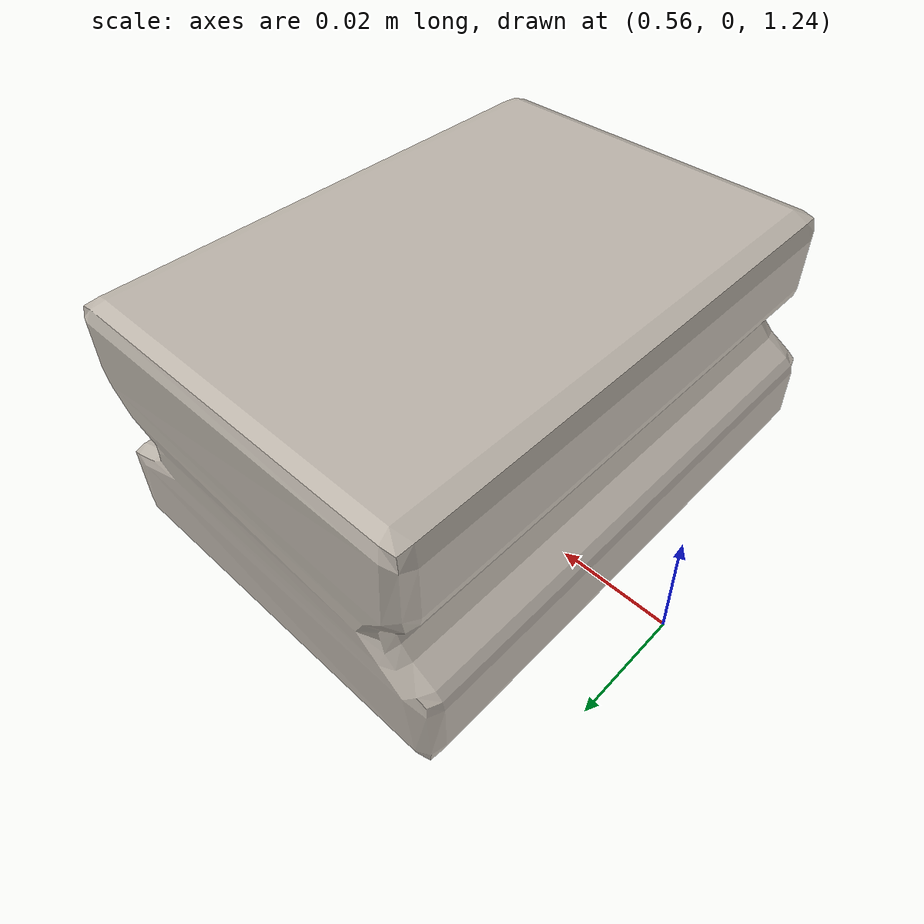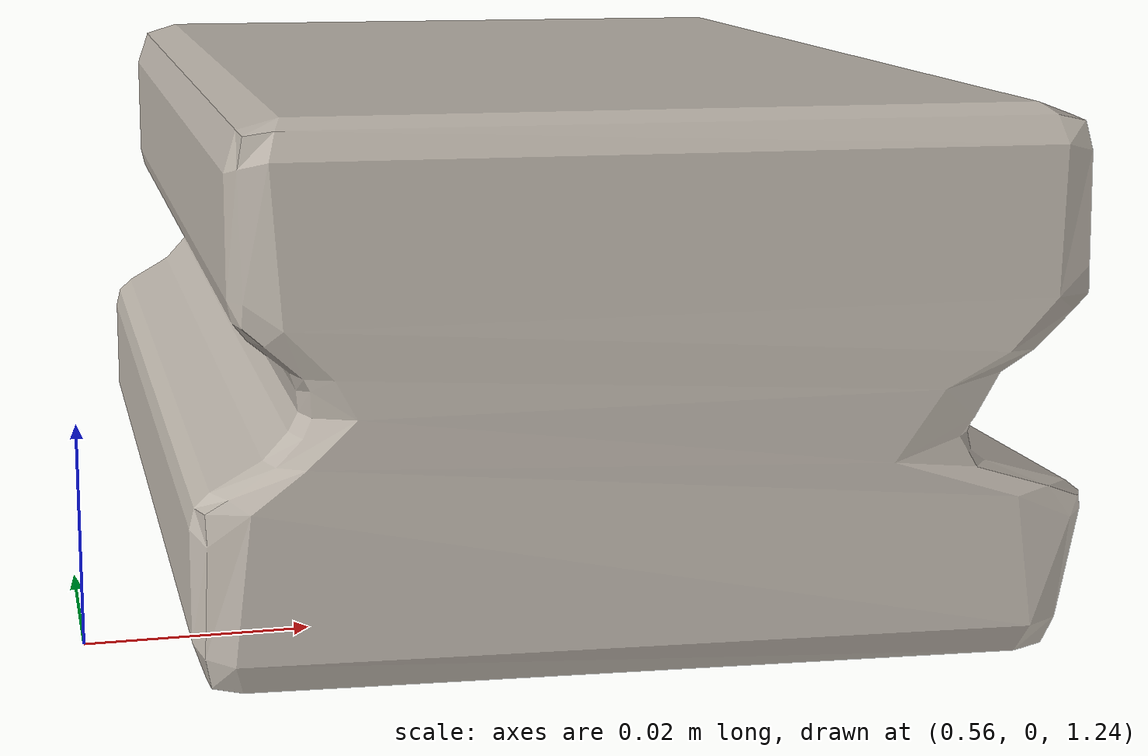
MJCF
<mujoco model="sponge_3">
  <asset>
    <mesh file="../objects/bigym/sponge_3/visual/model_normalized_0.obj" name="sponge_3_model_normalized_0_vis" scale="0.08999999999999997 0.08999999999999997 0.08999999999999997" refquat="0.7071067811865475 -0.7071067811865476 0.0 0.0"/>
    <mesh file="../objects/bigym/sponge_3/collision/model_normalized_collision_22.obj" name="sponge_3_model_normalized_collision_22._coll" scale="0.08999999999999997 0.08999999999999997 0.08999999999999997" refquat="0.7071067811865475 -0.7071067811865476 0.0 0.0"/>
    <mesh file="../objects/bigym/sponge_3/collision/model_normalized_collision_23.obj" name="sponge_3_model_normalized_collision_23._coll" scale="0.08999999999999997 0.08999999999999997 0.08999999999999997" refquat="0.7071067811865475 -0.7071067811865476 0.0 0.0"/>
    <mesh file="../objects/bigym/sponge_3/collision/model_normalized_collision_21.obj" name="sponge_3_model_normalized_collision_21._coll" scale="0.08999999999999997 0.08999999999999997 0.08999999999999997" refquat="0.7071067811865475 -0.7071067811865476 0.0 0.0"/>
    <mesh file="../objects/bigym/sponge_3/collision/model_normalized_collision_20.obj" name="sponge_3_model_normalized_collision_20._coll" scale="0.08999999999999997 0.08999999999999997 0.08999999999999997" refquat="0.7071067811865475 -0.7071067811865476 0.0 0.0"/>
    <mesh file="../objects/bigym/sponge_3/collision/model_normalized_collision_24.obj" name="sponge_3_model_normalized_collision_24._coll" scale="0.08999999999999997 0.08999999999999997 0.08999999999999997" refquat="0.7071067811865475 -0.7071067811865476 0.0 0.0"/>
    <mesh file="../objects/bigym/sponge_3/collision/model_normalized_collision_30.obj" name="sponge_3_model_normalized_collision_30._coll" scale="0.08999999999999997 0.08999999999999997 0.08999999999999997" refquat="0.7071067811865475 -0.7071067811865476 0.0 0.0"/>
    <mesh file="../objects/bigym/sponge_3/collision/model_normalized_collision_18.obj" name="sponge_3_model_normalized_collision_18._coll" scale="0.08999999999999997 0.08999999999999997 0.08999999999999997" refquat="0.7071067811865475 -0.7071067811865476 0.0 0.0"/>
    <mesh file="../objects/bigym/sponge_3/collision/model_normalized_collision_19.obj" name="sponge_3_model_normalized_collision_19._coll" scale="0.08999999999999997 0.08999999999999997 0.08999999999999997" refquat="0.7071067811865475 -0.7071067811865476 0.0 0.0"/>
    <mesh file="../objects/bigym/sponge_3/collision/model_normalized_collision_31.obj" name="sponge_3_model_normalized_collision_31._coll" scale="0.08999999999999997 0.08999999999999997 0.08999999999999997" refquat="0.7071067811865475 -0.7071067811865476 0.0 0.0"/>
    <mesh file="../objects/bigym/sponge_3/collision/model_normalized_collision_25.obj" name="sponge_3_model_normalized_collision_25._coll" scale="0.08999999999999997 0.08999999999999997 0.08999999999999997" refquat="0.7071067811865475 -0.7071067811865476 0.0 0.0"/>
    <mesh file="../objects/bigym/sponge_3/collision/model_normalized_collision_27.obj" name="sponge_3_model_normalized_collision_27._coll" scale="0.08999999999999997 0.08999999999999997 0.08999999999999997" refquat="0.7071067811865475 -0.7071067811865476 0.0 0.0"/>
    <mesh file="../objects/bigym/sponge_3/collision/model_normalized_collision_26.obj" name="sponge_3_model_normalized_collision_26._coll" scale="0.08999999999999997 0.08999999999999997 0.08999999999999997" refquat="0.7071067811865475 -0.7071067811865476 0.0 0.0"/>
    <mesh file="../objects/bigym/sponge_3/collision/model_normalized_collision_9.obj" name="sponge_3_model_normalized_collision_9._coll" scale="0.08999999999999997 0.08999999999999997 0.08999999999999997" refquat="0.7071067811865475 -0.7071067811865476 0.0 0.0"/>
    <mesh file="../objects/bigym/sponge_3/collision/model_normalized_collision_8.obj" name="sponge_3_model_normalized_collision_8._coll" scale="0.08999999999999997 0.08999999999999997 0.08999999999999997" refquat="0.7071067811865475 -0.7071067811865476 0.0 0.0"/>
    <mesh file="../objects/bigym/sponge_3/collision/model_normalized_collision_6.obj" name="sponge_3_model_normalized_collision_6._coll" scale="0.08999999999999997 0.08999999999999997 0.08999999999999997" refquat="0.7071067811865475 -0.7071067811865476 0.0 0.0"/>
    <mesh file="../objects/bigym/sponge_3/collision/model_normalized_collision_7.obj" name="sponge_3_model_normalized_collision_7._coll" scale="0.08999999999999997 0.08999999999999997 0.08999999999999997" refquat="0.7071067811865475 -0.7071067811865476 0.0 0.0"/>
    <mesh file="../objects/bigym/sponge_3/collision/model_normalized_collision_5.obj" name="sponge_3_model_normalized_collision_5._coll" scale="0.08999999999999997 0.08999999999999997 0.08999999999999997" refquat="0.7071067811865475 -0.7071067811865476 0.0 0.0"/>
    <mesh file="../objects/bigym/sponge_3/collision/model_normalized_collision_4.obj" name="sponge_3_model_normalized_collision_4._coll" scale="0.08999999999999997 0.08999999999999997 0.08999999999999997" refquat="0.7071067811865475 -0.7071067811865476 0.0 0.0"/>
    <mesh file="../objects/bigym/sponge_3/collision/model_normalized_collision_0.obj" name="sponge_3_model_normalized_collision_0._coll" scale="0.08999999999999997 0.08999999999999997 0.08999999999999997" refquat="0.7071067811865475 -0.7071067811865476 0.0 0.0"/>
    <mesh file="../objects/bigym/sponge_3/collision/model_normalized_collision_1.obj" name="sponge_3_model_normalized_collision_1._coll" scale="0.08999999999999997 0.08999999999999997 0.08999999999999997" refquat="0.7071067811865475 -0.7071067811865476 0.0 0.0"/>
    <mesh file="../objects/bigym/sponge_3/collision/model_normalized_collision_3.obj" name="sponge_3_model_normalized_collision_3._coll" scale="0.08999999999999997 0.08999999999999997 0.08999999999999997" refquat="0.7071067811865475 -0.7071067811865476 0.0 0.0"/>
    <mesh file="../objects/bigym/sponge_3/collision/model_normalized_collision_2.obj" name="sponge_3_model_normalized_collision_2._coll" scale="0.08999999999999997 0.08999999999999997 0.08999999999999997" refquat="0.7071067811865475 -0.7071067811865476 0.0 0.0"/>
    <mesh file="../objects/bigym/sponge_3/collision/model_normalized_collision_17.obj" name="sponge_3_model_normalized_collision_17._coll" scale="0.08999999999999997 0.08999999999999997 0.08999999999999997" refquat="0.7071067811865475 -0.7071067811865476 0.0 0.0"/>
    <mesh file="../objects/bigym/sponge_3/collision/model_normalized_collision_16.obj" name="sponge_3_model_normalized_collision_16._coll" scale="0.08999999999999997 0.08999999999999997 0.08999999999999997" refquat="0.7071067811865475 -0.7071067811865476 0.0 0.0"/>
    <mesh file="../objects/bigym/sponge_3/collision/model_normalized_collision_28.obj" name="sponge_3_model_normalized_collision_28._coll" scale="0.08999999999999997 0.08999999999999997 0.08999999999999997" refquat="0.7071067811865475 -0.7071067811865476 0.0 0.0"/>
    <mesh file="../objects/bigym/sponge_3/collision/model_normalized_collision_14.obj" name="sponge_3_model_normalized_collision_14._coll" scale="0.08999999999999997 0.08999999999999997 0.08999999999999997" refquat="0.7071067811865475 -0.7071067811865476 0.0 0.0"/>
    <mesh file="../objects/bigym/sponge_3/collision/model_normalized_collision_15.obj" name="sponge_3_model_normalized_collision_15._coll" scale="0.08999999999999997 0.08999999999999997 0.08999999999999997" refquat="0.7071067811865475 -0.7071067811865476 0.0 0.0"/>
    <mesh file="../objects/bigym/sponge_3/collision/model_normalized_collision_29.obj" name="sponge_3_model_normalized_collision_29._coll" scale="0.08999999999999997 0.08999999999999997 0.08999999999999997" refquat="0.7071067811865475 -0.7071067811865476 0.0 0.0"/>
    <mesh file="../objects/bigym/sponge_3/collision/model_normalized_collision_11.obj" name="sponge_3_model_normalized_collision_11._coll" scale="0.08999999999999997 0.08999999999999997 0.08999999999999997" refquat="0.7071067811865475 -0.7071067811865476 0.0 0.0"/>
    <mesh file="../objects/bigym/sponge_3/collision/model_normalized_collision_10.obj" name="sponge_3_model_normalized_collision_10._coll" scale="0.08999999999999997 0.08999999999999997 0.08999999999999997" refquat="0.7071067811865475 -0.7071067811865476 0.0 0.0"/>
    <mesh file="../objects/bigym/sponge_3/collision/model_normalized_collision_12.obj" name="sponge_3_model_normalized_collision_12._coll" scale="0.08999999999999997 0.08999999999999997 0.08999999999999997" refquat="0.7071067811865475 -0.7071067811865476 0.0 0.0"/>
    <mesh file="../objects/bigym/sponge_3/collision/model_normalized_collision_13.obj" name="sponge_3_model_normalized_collision_13._coll" scale="0.08999999999999997 0.08999999999999997 0.08999999999999997" refquat="0.7071067811865475 -0.7071067811865476 0.0 0.0"/>
    <texture type="2d" name="sponge_3_image0" file="../objects/bigym/sponge_3/visual/image0.png"/>
    <material name="Material__35" texture="sponge_3_image0" specular="0.5" shininess="0.25"/>
  </asset>

  <default class="main">
    <default class="sponge_3">
      <default class="sponge_3_visual">
        <geom type="mesh" contype="0" conaffinity="0" group="2" friction="1.5 0.005 0.0001"/>
      </default>
      <default class="sponge_3_collision">
        <geom type="mesh" group="3" solref="0.004" solimp="0.95 0.98" condim="4" />
      </default>
    </default>
  </default>

  <worldbody>
      <body name="sponge_3_object" pos="0.6 0 1.27" quat="0 1 0 0" >
        <freejoint/>
        <geom class="sponge_3_visual" mesh="sponge_3_model_normalized_0_vis" material="Material__35" mass="0.001"/>
        <geom class="sponge_3_collision" mesh="sponge_3_model_normalized_collision_22._coll" rgba="0.8 0.8 0.8 0.0"/>
        <geom class="sponge_3_collision" mesh="sponge_3_model_normalized_collision_23._coll" rgba="0.8 0.8 0.8 0.0"/>
        <geom class="sponge_3_collision" mesh="sponge_3_model_normalized_collision_21._coll" rgba="0.8 0.8 0.8 0.0"/>
        <geom class="sponge_3_collision" mesh="sponge_3_model_normalized_collision_20._coll" rgba="0.8 0.8 0.8 0.0"/>
        <geom class="sponge_3_collision" mesh="sponge_3_model_normalized_collision_24._coll" rgba="0.8 0.8 0.8 0.0"/>
        <geom class="sponge_3_collision" mesh="sponge_3_model_normalized_collision_30._coll" rgba="0.8 0.8 0.8 0.0"/>
        <geom class="sponge_3_collision" mesh="sponge_3_model_normalized_collision_18._coll" rgba="0.8 0.8 0.8 0.0"/>
        <geom class="sponge_3_collision" mesh="sponge_3_model_normalized_collision_19._coll" rgba="0.8 0.8 0.8 0.0"/>
        <geom class="sponge_3_collision" mesh="sponge_3_model_normalized_collision_31._coll" rgba="0.8 0.8 0.8 0.0"/>
        <geom class="sponge_3_collision" mesh="sponge_3_model_normalized_collision_25._coll" rgba="0.8 0.8 0.8 0.0"/>
        <geom class="sponge_3_collision" mesh="sponge_3_model_normalized_collision_27._coll" rgba="0.8 0.8 0.8 0.0"/>
        <geom class="sponge_3_collision" mesh="sponge_3_model_normalized_collision_26._coll" rgba="0.8 0.8 0.8 0.0"/>
        <geom class="sponge_3_collision" mesh="sponge_3_model_normalized_collision_9._coll" rgba="0.8 0.8 0.8 0.0"/>
        <geom class="sponge_3_collision" mesh="sponge_3_model_normalized_collision_8._coll" rgba="0.8 0.8 0.8 0.0"/>
        <geom class="sponge_3_collision" mesh="sponge_3_model_normalized_collision_6._coll" rgba="0.8 0.8 0.8 0.0"/>
        <geom class="sponge_3_collision" mesh="sponge_3_model_normalized_collision_7._coll" rgba="0.8 0.8 0.8 0.0"/>
        <geom class="sponge_3_collision" mesh="sponge_3_model_normalized_collision_5._coll" rgba="0.8 0.8 0.8 0.0"/>
        <geom class="sponge_3_collision" mesh="sponge_3_model_normalized_collision_4._coll" rgba="0.8 0.8 0.8 0.0"/>
        <geom class="sponge_3_collision" mesh="sponge_3_model_normalized_collision_0._coll" rgba="0.8 0.8 0.8 0.0"/>
        <geom class="sponge_3_collision" mesh="sponge_3_model_normalized_collision_1._coll" rgba="0.8 0.8 0.8 0.0"/>
        <geom class="sponge_3_collision" mesh="sponge_3_model_normalized_collision_3._coll" rgba="0.8 0.8 0.8 0.0"/>
        <geom class="sponge_3_collision" mesh="sponge_3_model_normalized_collision_2._coll" rgba="0.8 0.8 0.8 0.0"/>
        <geom class="sponge_3_collision" mesh="sponge_3_model_normalized_collision_17._coll" rgba="0.8 0.8 0.8 0.0"/>
        <geom class="sponge_3_collision" mesh="sponge_3_model_normalized_collision_16._coll" rgba="0.8 0.8 0.8 0.0"/>
        <geom class="sponge_3_collision" mesh="sponge_3_model_normalized_collision_28._coll" rgba="0.8 0.8 0.8 0.0"/>
        <geom class="sponge_3_collision" mesh="sponge_3_model_normalized_collision_14._coll" rgba="0.8 0.8 0.8 0.0"/>
        <geom class="sponge_3_collision" mesh="sponge_3_model_normalized_collision_15._coll" rgba="0.8 0.8 0.8 0.0"/>
        <geom class="sponge_3_collision" mesh="sponge_3_model_normalized_collision_29._coll" rgba="0.8 0.8 0.8 0.0"/>
        <geom class="sponge_3_collision" mesh="sponge_3_model_normalized_collision_11._coll" rgba="0.8 0.8 0.8 0.0"/>
        <geom class="sponge_3_collision" mesh="sponge_3_model_normalized_collision_10._coll" rgba="0.8 0.8 0.8 0.0"/>
        <geom class="sponge_3_collision" mesh="sponge_3_model_normalized_collision_12._coll" rgba="0.8 0.8 0.8 0.0"/>
        <geom class="sponge_3_collision" mesh="sponge_3_model_normalized_collision_13._coll" rgba="0.8 0.8 0.8 0.0"/>
      </body>
  </worldbody>
</mujoco>
